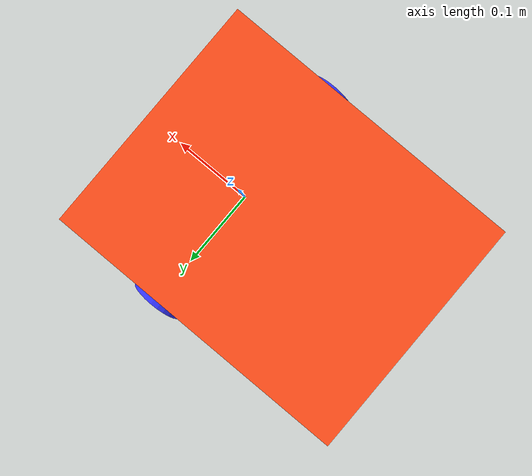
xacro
<?xml version="1.0"?>
<robot xmlns:xacro="http://www.ros.org/wiki/xacro" name="diffdrive_robot">

    <xacro:arg name="use_mock_hardware" default="true" />

    <!-- Import diff_drive urdf file -->
    <xacro:include filename="$(find diff_drive)/urdf/diffbot.urdf" />

    <!-- Import control_xacro -->
    <xacro:include filename="$(find diff_drive)/config/diff_drive.ros2_control.xacro" />

    <xacro:diff_drive_ros2_control
    name="DiffBot" use_mock_hardware="$(arg use_mock_hardware)"/>

    <xacro:include filename="lidar.xacro" />

    <!-- Include Gazebo Parameters -->
    <xacro:include filename="$(find diff_drive)/config/diff_drive_gazebo.xacro" />

</robot>

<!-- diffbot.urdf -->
<robot xmlns:xacro="http://www.ros.org/wiki/xacro" >

    <xacro:include filename="inertial_macros.xacro"/>

    <xacro:property name="chassis_length" value="0.335"/>
    <xacro:property name="chassis_width" value="0.265"/>
    <xacro:property name="chassis_height" value="0.138"/>
    <xacro:property name="chassis_mass" value="1.0"/>
    <xacro:property name="wheel_radius" value="0.033"/>
    <xacro:property name="wheel_thickness" value="0.026"/>
    <xacro:property name="wheel_mass" value="1.0"/>
    <xacro:property name="wheel_offset_x" value="0.226"/>
    <xacro:property name="wheel_offset_y" value="0.1485"/>
    <xacro:property name="wheel_offset_z" value="0.01"/>
    <xacro:property name="caster_wheel_radius" value="0.01"/>
    <xacro:property name="caster_wheel_mass" value="0.01"/>
    <xacro:property name="caster_wheel_offset_x" value="0.075"/>
    <xacro:property name="caster_wheel_offset_z" value="${wheel_offset_z - wheel_radius + caster_wheel_radius}"/>

    <material name="white">
        <color rgba="1 1 1 1" />
    </material>

    <material name="orange">
        <color rgba="1 0.3 0.1 1"/>
    </material>

    <material name="blue">
        <color rgba="0.2 0.2 1 1"/>
    </material>

    <material name="black">
        <color rgba="0 0 0 1"/>
    </material>

    <material name="red">
        <color rgba="1 0 0 1"/>
    </material>

    <!-- BASE LINK -->

    <link name="base_link">

    </link>

    <!-- BASE_FOOTPRINT LINK -->

    <joint name="base_footprint_joint" type="fixed">
        <parent link="base_link"/>
        <child link="base_footprint"/>
        <origin xyz="0 0 0" rpy="0 0 0"/>
    </joint>

    <link name="base_footprint">
    </link>

    <!-- CHASSIS LINK -->

    <joint name="chassis_joint" type="fixed">
        <parent link="base_link"/>
        <child link="chassis"/>
        <origin xyz="${-wheel_offset_x} 0 ${-wheel_offset_z}"/>
    </joint>

    <link name="chassis">
        <visual>
            <origin xyz="${chassis_length/2} 0 ${chassis_height/2}"/>
            <geometry>
                <box size="${chassis_length} ${chassis_width} ${chassis_height}"/>
            </geometry>
            <material name="orange"/>
        </visual>
        <collision>
            <origin xyz="${chassis_length/2} 0 ${chassis_height/2}"/>
            <geometry>
                <box size="${chassis_length} ${chassis_width} ${chassis_height}"/>
            </geometry>
        </collision>
        <xacro:inertial_box mass="0.5" x="${chassis_length}" y="${chassis_width}" z="${chassis_height}">
            <origin xyz="${chassis_length/2} 0 ${chassis_height/2}" rpy="0 0 0"/>
        </xacro:inertial_box>
    </link>

    <gazebo reference="chassis">
        <material>Gazebo/Orange</material>
    </gazebo>

    <!-- LEFT WHEEL LINK -->

    <joint name="left_wheel_joint" type="continuous">
        <parent link="base_link"/>
        <child link="left_wheel"/>
        <origin xyz="0 ${wheel_offset_y} 0" rpy="-${pi/2} 0 0" />
        <axis xyz="0 0 1"/>
    </joint>

    <link name="left_wheel">
        <visual>
            <geometry>
                <cylinder radius="${wheel_radius}" length="${wheel_thickness}"/>
            </geometry>
            <material name="blue"/>
        </visual>
        <collision>
            <geometry>
                <sphere radius="${wheel_radius}"/>
            </geometry>
        </collision>
        <xacro:inertial_cylinder mass="${wheel_mass}" length="${wheel_thickness}" radius="${wheel_radius}">
            <origin xyz="0 0 0" rpy="0 0 0"/>
        </xacro:inertial_cylinder>
    </link>

    <gazebo reference="left_wheel">
        <material>Gazebo/Blue</material>
    </gazebo>

    <!-- RIGHT WHEEL LINK -->

    <joint name="right_wheel_joint" type="continuous">
        <parent link="base_link"/>
        <child link="right_wheel"/>
        <origin xyz="0 ${-wheel_offset_y} 0" rpy="${pi/2} 0 0" />
        <axis xyz="0 0 -1"/>
    </joint>

    <link name="right_wheel">
        <visual>
            <geometry>
                <cylinder radius="${wheel_radius}" length="${wheel_thickness}"/>
            </geometry>
            <material name="blue"/>
        </visual>
        <collision>
            <geometry>
                <sphere radius="${wheel_radius}"/>
            </geometry>
        </collision>
        <xacro:inertial_cylinder mass="${wheel_mass}" length="${wheel_thickness}" radius="${wheel_radius}">
            <origin xyz="0 0 0" rpy="0 0 0"/>
        </xacro:inertial_cylinder>
    </link>

    <gazebo reference="right_wheel">
        <material>Gazebo/Blue</material>
    </gazebo>

    <!-- CASTER WHEEL LINK -->

    <joint name="caster_wheel_joint" type="fixed">
        <parent link="chassis"/>
        <child link="caster_wheel"/>
        <origin xyz="${caster_wheel_offset_x} 0 ${caster_wheel_offset_z}"/>
    </joint>

    <link name="caster_wheel">
        <visual>
            <geometry>
                <sphere radius="${caster_wheel_radius}"/>
            </geometry>
            <material name="white"/>
        </visual>
        <collision>
            <geometry>
                <sphere radius="${caster_wheel_radius}"/>
            </geometry>
        </collision>
        <xacro:inertial_sphere mass="${caster_wheel_mass}" radius="${caster_wheel_radius}">
            <origin xyz="0 0 0" rpy="0 0 0"/>
        </xacro:inertial_sphere>
    </link>

    <gazebo reference="caster_wheel">
        <material>Gazebo/White</material>
        <mu1 value="0.001"/>
        <mu2 value="0.001"/>
    </gazebo>

</robot>

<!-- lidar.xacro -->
<robot xmlns:xacro="http://www.ros.org/wiki/xacro" >

    <joint name="laser_joint" type="fixed">
        <parent link="base_link"/>
        <child link="laser_frame"/>
        <origin xyz="0.085 0 0.08" rpy="0 0 0"/>
    </joint>

    <link name="laser_frame">
        <visual>
            <origin xyz="0 0 -0.05"/>
            <geometry>
                <cylinder radius="0.05" length="0.04"/>
            </geometry>
            <material name="black"/>
        </visual>
        <visual>
            <origin xyz="0 0 -0.05"/>
            <geometry>
                <cylinder radius="0.01" length="0.1"/>
            </geometry>
            <material name="black"/>
        </visual>
        <collision>
            <geometry>
                <cylinder radius="0.05" length="0.04"/>
            </geometry>
        </collision>
        <xacro:inertial_cylinder mass="0.1" length="0.04" radius="0.05">
            <origin xyz="0 0 0" rpy="0 0 0"/>
        </xacro:inertial_cylinder>
    </link>

    <gazebo reference="laser_frame">
        <material>Gazebo/Black</material>

        <sensor name="laser" type="ray">
            <always_on>true</always_on>
            <visualize>true</visualize>
            <pose>-0.064 0 0.121 0 0 0</pose>
            <update_rate>5</update_rate>
            <ray>
            <scan>
                <horizontal>
                <samples>599.6944232238</samples>
                <resolution>1.000000</resolution>
                <min_angle>4.97419</min_angle>
                <max_angle>7.59218</max_angle>
                </horizontal>
            </scan>
            <range>
                <min>0.120000</min>
                <max>3.5</max>
                <resolution>0.015000</resolution>
            </range>
            <noise>
                <type>gaussian</type>
                <mean>0.0</mean>
                <stddev>0.01</stddev>
            </noise>
            </ray>
            <plugin name="laser_controller" filename="libgazebo_ros_ray_sensor.so">
                <ros>
                    <remapping>~/out:=scan</remapping>
                </ros>
                <output_type>sensor_msgs/LaserScan</output_type>
                <frame_name>laser_frame</frame_name>
            </plugin>
        </sensor>
    </gazebo>

</robot>
